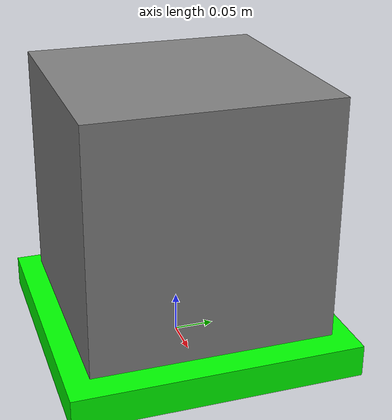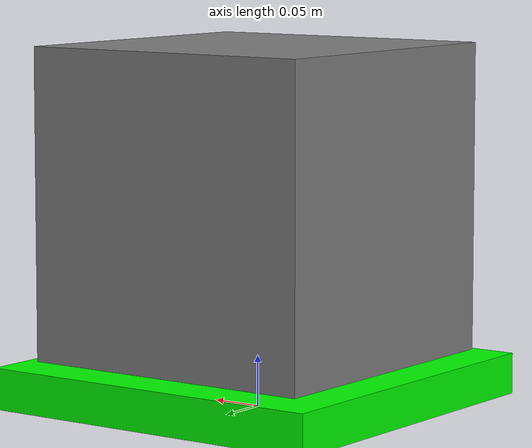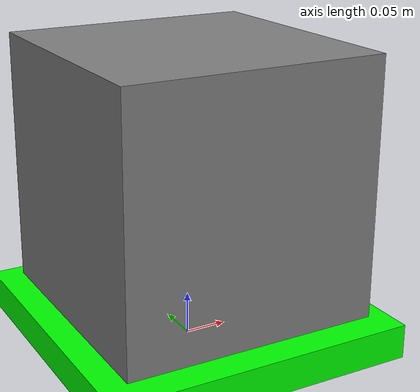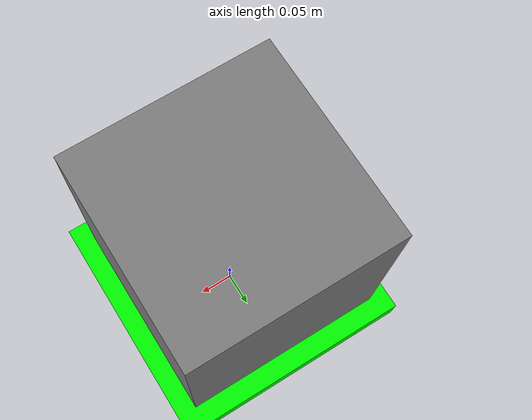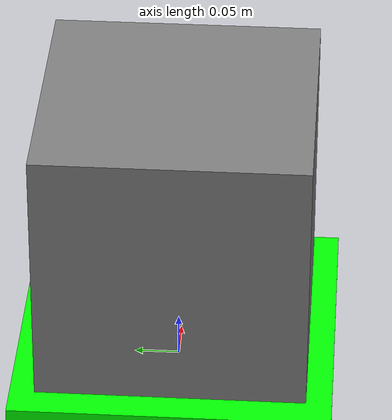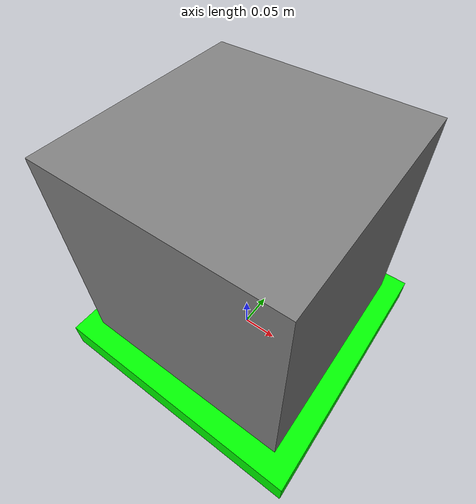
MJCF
<?xml version="1.0" ?>
<mujoco>
    <asset>
        <mesh file="banana.stl" name="banana"></mesh>
    </asset>
    <worldbody>
        <body name="box" pos="0 0 0.2">
            <geom size="0.15 0.15 0.15" type="box"/>
            <joint axis="1 0 0" name="box:x" type="slide"/>
            <joint axis="0 1 0" name="box:y" type="slide"/>
        </body>
        <body name="floor" pos="0 0 0.025">
            <geom size="1.0 1.0 0.02" rgba="0 1 0 1" type="box"/>
        </body>
    </worldbody>
</mujoco>
